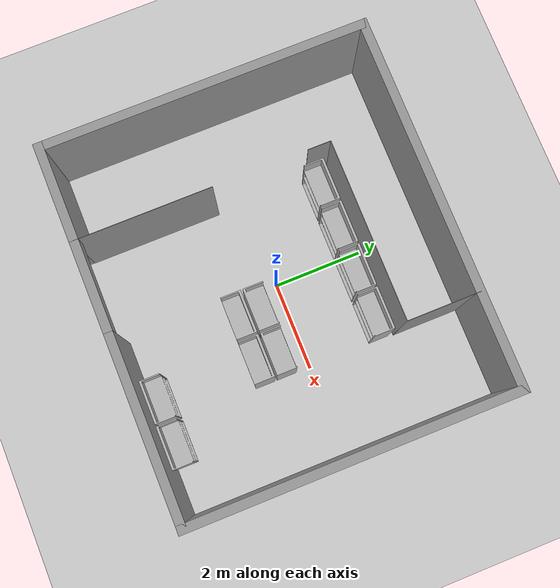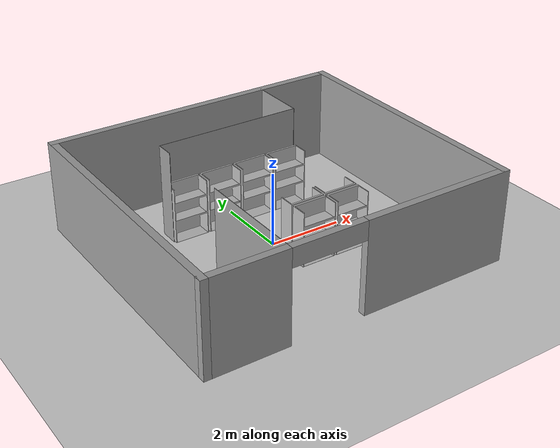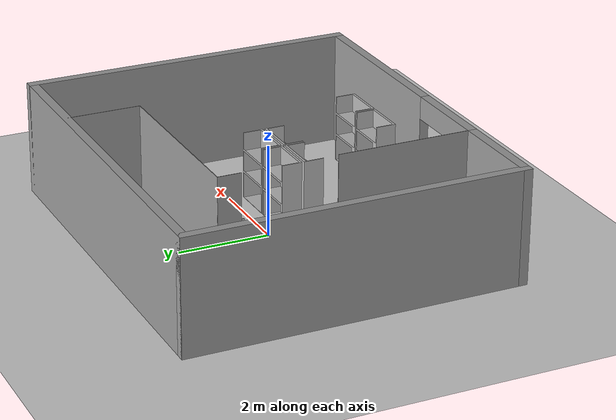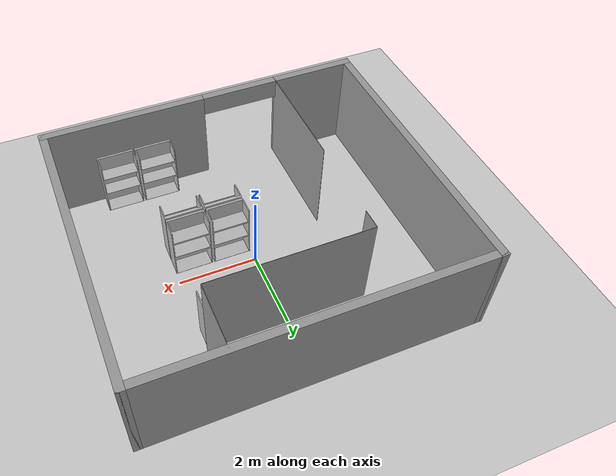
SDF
<sdf version="1.4">
 <world name="default">
  <light name="sun" type="directional">
   <pose>0 0 10 0 -0 0</pose>
   <diffuse>0.8 0.8 0.8 1</diffuse>
   <specular>0.2 0.2 0.2 1</specular>
   <attenuation>
    <range>1000</range>
    <constant>0.9</constant>
    <linear>0.01</linear>
    <quadratic>0.001</quadratic>
   </attenuation>
   <direction>-0.5 0.1 -0.9</direction>
  </light>
  <model name="ground_plane">
   <static>1</static>
   <link name="link">
    <collision name="collision">
     <geometry><plane><normal>0 0 1</normal><size>100 100</size></plane></geometry>
     <surface><friction><ode><mu>100</mu><mu2>50</mu2></ode></friction></surface>
    </collision>
    <visual name="visual">
     <cast_shadows>0</cast_shadows>
     <geometry><plane><normal>0 0 1</normal><size>100 100</size></plane></geometry>
     <material>
      <script><uri>file://media/materials/scripts/gazebo.material</uri><name>Gazebo/Grey</name></script>
     </material>
    </visual>
    <velocity_decay><linear>0</linear><angular>0</angular></velocity_decay>
   </link>
  </model>
  <physics type="ode">
   <max_step_size>0.001</max_step_size>
   <real_time_factor>1</real_time_factor>
   <real_time_update_rate>1000</real_time_update_rate>
   <gravity>0 0 -9.8</gravity>
  </physics>
  <scene><ambient>0.4 0.4 0.4 1</ambient><background>0.7 0.7 0.7 1</background><shadows>1</shadows></scene>
  <spherical_coordinates>
   <surface_model>EARTH_WGS84</surface_model>
   <latitude_deg>0</latitude_deg>
   <longitude_deg>0</longitude_deg>
   <elevation>0</elevation>
   <heading_deg>0</heading_deg>
  </spherical_coordinates>
  <model name="model">
   <link name="Wall_0">
    <collision name="Wall_0_Collision">
     <geometry><box><size>7.4 0.2 2.5</size></box></geometry>
     <pose>0 0 1.25 0 -0 0</pose>
    </collision>
    <visual name="Wall_0_Visual">
     <pose>0 0 1.25 0 -0 0</pose>
     <geometry><box><size>7.4 0.2 2.5</size></box></geometry>
     <material>
      <script><uri>file://media/materials/scripts/gazebo.material</uri><name>Gazebo/Grey</name></script>
     </material>
    </visual>
    <velocity_decay><linear>0</linear><angular>0</angular></velocity_decay>
    <pose>-4.1 0 0 0 -0 1.5708</pose>
   </link>
   <link name="Wall_1">
    <collision name="Wall_1_Collision">
     <geometry><box><size>8.4 0.2 2.5</size></box></geometry>
     <pose>0 0 1.25 0 -0 0</pose>
    </collision>
    <visual name="Wall_1_Visual">
     <pose>0 0 1.25 0 -0 0</pose>
     <geometry><box><size>8.4 0.2 2.5</size></box></geometry>
     <material>
      <script><uri>file://media/materials/scripts/gazebo.material</uri><name>Gazebo/Grey</name></script>
     </material>
    </visual>
    <velocity_decay><linear>0</linear><angular>0</angular></velocity_decay>
    <pose>0 3.6 0 0 -0 0</pose>
   </link>
   <link name="Wall_12">
    <collision name="Wall_12_Collision">
     <geometry><box><size>0.51 0.01 2.5</size></box></geometry>
     <pose>0 0 1.25 0 -0 0</pose>
    </collision>
    <visual name="Wall_12_Visual">
     <pose>0 0 1.25 0 -0 0</pose>
     <geometry><box><size>0.51 0.01 2.5</size></box></geometry>
     <material>
      <script><uri>file://media/materials/scripts/gazebo.material</uri><name>Gazebo/Grey</name></script>
     </material>
    </visual>
    <velocity_decay><linear>0</linear><angular>0</angular></velocity_decay>
    <pose>-2 1.75 0 0 -0 1.5708</pose>
   </link>
   <link name="Wall_13">
    <collision name="Wall_13_Collision">
     <geometry><box><size>4.01 0.01 2.5</size></box></geometry>
     <pose>0 0 1.25 0 -0 0</pose>
    </collision>
    <visual name="Wall_13_Visual">
     <pose>0 0 1.25 0 -0 0</pose>
     <geometry><box><size>4.01 0.01 2.5</size></box></geometry>
     <material>
      <script><uri>file://media/materials/scripts/gazebo.material</uri><name>Gazebo/Grey</name></script>
     </material>
    </visual>
    <velocity_decay><linear>0</linear><angular>0</angular></velocity_decay>
    <pose>0 2 0 0 -0 0</pose>
   </link>
   <link name="Wall_14">
    <collision name="Wall_14_Collision">
     <geometry><box><size>1.61 0.01 2.5</size></box></geometry>
     <pose>0 0 1.25 0 -0 0</pose>
    </collision>
    <visual name="Wall_14_Visual">
     <pose>0 0 1.25 0 -0 0</pose>
     <geometry><box><size>1.61 0.01 2.5</size></box></geometry>
     <material>
      <script><uri>file://media/materials/scripts/gazebo.material</uri><name>Gazebo/Grey</name></script>
     </material>
    </visual>
    <velocity_decay><linear>0</linear><angular>0</angular></velocity_decay>
    <pose>2 2.8 0 0 -0 1.5708</pose>
   </link>
   <link name="Wall_2">
    <collision name="Wall_2_Collision">
     <geometry><box><size>7.4 0.2 2.5</size></box></geometry>
     <pose>0 0 1.25 0 -0 0</pose>
    </collision>
    <visual name="Wall_2_Visual">
     <pose>0 0 1.25 0 -0 0</pose>
     <geometry><box><size>7.4 0.2 2.5</size></box></geometry>
     <material>
      <script><uri>file://media/materials/scripts/gazebo.material</uri><name>Gazebo/Grey</name></script>
     </material>
    </visual>
    <velocity_decay><linear>0</linear><angular>0</angular></velocity_decay>
    <pose>4.1 0 0 0 0 -1.5708</pose>
   </link>
   <link name="Wall_3">
    <pose>0 -3.6 0 0 -0 3.14159</pose>
    <visual name="Wall_3_Visual_0">
     <pose>-2.1 0 1.25 0 -0 0</pose>
     <geometry><box><size>4.2 0.2 2.5</size></box></geometry>
     <material>
      <script><uri>file://media/materials/scripts/gazebo.material</uri><name>Gazebo/Grey</name></script>
     </material>
    </visual>
    <collision name="Wall_3_Collision_0">
     <geometry><box><size>4.2 0.2 2.5</size></box></geometry>
     <pose>-2.1 0 1.25 0 -0 0</pose>
    </collision>
    <visual name="Wall_3_Visual_1">
     <pose>3.1 0 1.25 0 -0 0</pose>
     <geometry><box><size>2.2 0.2 2.5</size></box></geometry>
     <material>
      <script><uri>file://media/materials/scripts/gazebo.material</uri><name>Gazebo/Grey</name></script>
     </material>
    </visual>
    <collision name="Wall_3_Collision_1">
     <geometry><box><size>2.2 0.2 2.5</size></box></geometry>
     <pose>3.1 0 1.25 0 -0 0</pose>
    </collision>
    <visual name="Wall_3_Visual_2">
     <pose>1 0 2.25 0 -0 0</pose>
     <geometry><box><size>2 0.2 0.5</size></box></geometry>
     <material>
      <script><uri>file://media/materials/scripts/gazebo.material</uri><name>Gazebo/Grey</name></script>
     </material>
    </visual>
    <collision name="Wall_3_Collision_2">
     <geometry><box><size>2 0.2 0.5</size></box></geometry>
     <pose>1 0 2.25 0 -0 0</pose>
    </collision>
    <velocity_decay><linear>0</linear><angular>0</angular></velocity_decay>
   </link>
   <link name="Wall_5">
    <collision name="Wall_5_Collision">
     <geometry><box><size>3.01 0.01 2.5</size></box></geometry>
     <pose>0 0 1.25 0 -0 0</pose>
    </collision>
    <visual name="Wall_5_Visual">
     <pose>0 0 1.25 0 -0 0</pose>
     <geometry><box><size>3.01 0.01 2.5</size></box></geometry>
     <material>
      <script><uri>file://media/materials/scripts/gazebo.material</uri><name>Gazebo/Grey</name></script>
     </material>
    </visual>
    <velocity_decay><linear>0</linear><angular>0</angular></velocity_decay>
    <pose>-2 -2.1 0 0 -0 1.5708</pose>
   </link>
   <static>1</static>
  </model>
  <model name="shelfA">
   <link name="shelf">
    <inertial>
     <pose>-1.38e-08 -6.1e-09 3.66e-08 0 -0 0</pose>
     <mass>5</mass>
     <inertia>
      <ixx>1</ixx>
      <ixy>-7.01498e-09</ixy>
      <ixz>4.209e-08</ixz>
      <iyy>1</iyy>
      <iyz>1.8605e-08</iyz>
      <izz>1</izz>
     </inertia>
    </inertial>
    <collision name="shelf_collision">
     <geometry>
      <mesh>
       <scale>1 1 1</scale>
       <uri>/home/kdel/workspace/ros/fcsc_ws/src/fcsc_pkgs/fcsc_description/mesh/shelf.stl</uri>
      </mesh>
     </geometry>
    </collision>
    <collision name="shelf_collision_ar_marker_40">
     <pose>-0.23 0.265 0.61 0.785398 -1.56967 -0.784602</pose>
     <geometry><box><size>0.03 0.03 0.0001</size></box></geometry>
    </collision>
    <collision name="shelf_collision_ar_marker_41">
     <pose>-0.23 -0.135 0.61 0.785398 -1.56967 -0.784602</pose>
     <geometry><box><size>0.03 0.03 0.0001</size></box></geometry>
    </collision>
    <collision name="shelf_collision_ar_marker_42">
     <pose>-0.23 -0.435 0.61 0.785398 -1.56967 -0.784602</pose>
     <geometry><box><size>0.03 0.03 0.0001</size></box></geometry>
    </collision>
    <visual name="shelf_visual">
     <geometry>
      <mesh>
       <scale>1 1 1</scale>
       <uri>/home/kdel/workspace/ros/fcsc_ws/src/fcsc_pkgs/fcsc_description/mesh/shelf.stl</uri>
      </mesh>
     </geometry>
    </visual>
    <visual name="shelf_visual_ar_marker_40">
     <pose>-0.23 0.265 0.61 0.785398 -1.56967 -0.784602</pose>
     <geometry><box><size>0.03 0.03 0.0001</size></box></geometry>
     <material><script><name>ar_marker_40</name><uri>__default__</uri></script></material>
    </visual>
    <visual name="shelf_visual_ar_marker_41">
     <pose>-0.23 -0.135 0.61 0.785398 -1.56967 -0.784602</pose>
     <geometry><box><size>0.03 0.03 0.0001</size></box></geometry>
     <material><script><name>ar_marker_41</name><uri>__default__</uri></script></material>
    </visual>
    <visual name="shelf_visual_ar_marker_42">
     <pose>-0.23 -0.435 0.61 0.785398 -1.56967 -0.784602</pose>
     <geometry><box><size>0.03 0.03 0.0001</size></box></geometry>
     <material><script><name>ar_marker_42</name><uri>__default__</uri></script></material>
    </visual>
    <velocity_decay><linear>0</linear><angular>0</angular></velocity_decay>
    <velocity_decay><linear>0</linear><angular>0</angular></velocity_decay>
    <velocity_decay><linear>0</linear><angular>0</angular></velocity_decay>
   </link>
   <joint name="fix" type="revolute">
    <child>shelf</child>
    <parent>world</parent>
    <axis>
     <limit><lower>0</lower><upper>0</upper></limit>
     <dynamics><damping>0</damping></dynamics>
     <xyz>0 0 1</xyz>
    </axis>
   </joint>
   <pose>-0.5 1.65 0 0 -0 1.5708</pose>
   <static>0</static>
  </model>
  <model name="shelf2">
   <link name="shelf">
    <inertial>
     <mass>5</mass>
     <inertia><ixx>1</ixx><ixy>0</ixy><ixz>0</ixz><iyy>1</iyy><iyz>0</iyz><izz>1</izz></inertia>
    </inertial>
    <collision name="shelf_collision">
     <geometry>
      <mesh>
       <scale>1 1 1</scale>
       <uri>/home/kdel/workspace/ros/fcsc_ws/src/fcsc_pkgs/fcsc_description/mesh/shelf.stl</uri>
      </mesh>
     </geometry>
    </collision>
    <visual name="shelf_visual">
     <geometry>
      <mesh>
       <scale>1 1 1</scale>
       <uri>/home/kdel/workspace/ros/fcsc_ws/src/fcsc_pkgs/fcsc_description/mesh/shelf.stl</uri>
      </mesh>
     </geometry>
    </visual>
    <velocity_decay><linear>0</linear><angular>0</angular></velocity_decay>
   </link>
   <joint name="fix" type="revolute">
    <child>shelf</child>
    <parent>world</parent>
    <axis>
     <limit><lower>0</lower><upper>0</upper></limit>
     <dynamics><damping>0</damping></dynamics>
     <xyz>0 0 1</xyz>
    </axis>
   </joint>
   <pose>0.5 1.65 0 0 -0 1.5708</pose>
   <static>0</static>
  </model>
  <model name="shelf3">
   <link name="shelf">
    <inertial>
     <mass>5</mass>
     <inertia><ixx>1</ixx><ixy>0</ixy><ixz>0</ixz><iyy>1</iyy><iyz>0</iyz><izz>1</izz></inertia>
    </inertial>
    <collision name="shelf_collision">
     <geometry>
      <mesh>
       <scale>1 1 1</scale>
       <uri>/home/kdel/workspace/ros/fcsc_ws/src/fcsc_pkgs/fcsc_description/mesh/shelf.stl</uri>
      </mesh>
     </geometry>
    </collision>
    <visual name="shelf_visual">
     <geometry>
      <mesh>
       <scale>1 1 1</scale>
       <uri>/home/kdel/workspace/ros/fcsc_ws/src/fcsc_pkgs/fcsc_description/mesh/shelf.stl</uri>
      </mesh>
     </geometry>
    </visual>
    <velocity_decay><linear>0</linear><angular>0</angular></velocity_decay>
   </link>
   <joint name="fix" type="revolute">
    <child>shelf</child>
    <parent>world</parent>
    <axis>
     <limit><lower>0</lower><upper>0</upper></limit>
     <dynamics><damping>0</damping></dynamics>
     <xyz>0 0 1</xyz>
    </axis>
   </joint>
   <pose>1.5 -0.55 0 0 0 -1.5708</pose>
   <static>0</static>
  </model>
  <model name="shelfB">
   <link name="shelf">
    <inertial>
     <mass>5</mass>
     <inertia><ixx>1</ixx><ixy>0</ixy><ixz>0</ixz><iyy>1</iyy><iyz>0</iyz><izz>1</izz></inertia>
    </inertial>
    <collision name="shelf_collision">
     <geometry>
      <mesh>
       <scale>1 1 1</scale>
       <uri>/home/kdel/workspace/ros/fcsc_ws/src/fcsc_pkgs/fcsc_description/mesh/shelf.stl</uri>
      </mesh>
     </geometry>
    </collision>
    <visual name="shelf_visual">
     <geometry>
      <mesh>
       <scale>1 1 1</scale>
       <uri>/home/kdel/workspace/ros/fcsc_ws/src/fcsc_pkgs/fcsc_description/mesh/shelf.stl</uri>
      </mesh>
     </geometry>
    </visual>
    <velocity_decay><linear>0</linear><angular>0</angular></velocity_decay>
   </link>
   <joint name="fix" type="revolute">
    <child>shelf</child>
    <parent>world</parent>
    <axis>
     <limit><lower>0</lower><upper>0</upper></limit>
     <dynamics><damping>0</damping></dynamics>
     <xyz>0 0 1</xyz>
    </axis>
   </joint>
   <pose>-1.5 1.65 0 0 -0 1.5708</pose>
   <static>0</static>
  </model>
  <model name="shelf8">
   <link name="shelf">
    <inertial>
     <mass>5</mass>
     <inertia><ixx>1</ixx><ixy>0</ixy><ixz>0</ixz><iyy>1</iyy><iyz>0</iyz><izz>1</izz></inertia>
    </inertial>
    <collision name="shelf_collision">
     <geometry>
      <mesh>
       <scale>1 1 1</scale>
       <uri>/home/kdel/workspace/ros/fcsc_ws/src/fcsc_pkgs/fcsc_description/mesh/shelf.stl</uri>
      </mesh>
     </geometry>
    </collision>
    <visual name="shelf_visual">
     <geometry>
      <mesh>
       <scale>1 1 1</scale>
       <uri>/home/kdel/workspace/ros/fcsc_ws/src/fcsc_pkgs/fcsc_description/mesh/shelf.stl</uri>
      </mesh>
     </geometry>
    </visual>
    <velocity_decay><linear>0</linear><angular>0</angular></velocity_decay>
   </link>
   <joint name="fix" type="revolute">
    <child>shelf</child>
    <parent>world</parent>
    <axis>
     <limit><lower>0</lower><upper>0</upper></limit>
     <dynamics><damping>0</damping></dynamics>
     <xyz>0 0 1</xyz>
    </axis>
   </joint>
   <pose>1.5 -3.25 0 0 0 -1.5708</pose>
   <static>0</static>
  </model>
  <model name="shelf7">
   <link name="shelf">
    <inertial>
     <mass>5</mass>
     <inertia><ixx>1</ixx><ixy>0</ixy><ixz>0</ixz><iyy>1</iyy><iyz>0</iyz><izz>1</izz></inertia>
    </inertial>
    <collision name="shelf_collision">
     <geometry>
      <mesh>
       <scale>1 1 1</scale>
       <uri>/home/kdel/workspace/ros/fcsc_ws/src/fcsc_pkgs/fcsc_description/mesh/shelf.stl</uri>
      </mesh>
     </geometry>
    </collision>
    <visual name="shelf_visual">
     <geometry>
      <mesh>
       <scale>1 1 1</scale>
       <uri>/home/kdel/workspace/ros/fcsc_ws/src/fcsc_pkgs/fcsc_description/mesh/shelf.stl</uri>
      </mesh>
     </geometry>
    </visual>
    <velocity_decay><linear>0</linear><angular>0</angular></velocity_decay>
   </link>
   <joint name="fix" type="revolute">
    <child>shelf</child>
    <parent>world</parent>
    <axis>
     <limit><lower>0</lower><upper>0</upper></limit>
     <dynamics><damping>0</damping></dynamics>
     <xyz>0 0 1</xyz>
    </axis>
   </joint>
   <pose>2.5 -3.25 0 0 0 -1.5708</pose>
   <static>0</static>
  </model>
  <model name="shelf1">
   <link name="shelf">
    <inertial>
     <mass>5</mass>
     <inertia><ixx>1</ixx><ixy>0</ixy><ixz>0</ixz><iyy>1</iyy><iyz>0</iyz><izz>1</izz></inertia>
    </inertial>
    <collision name="shelf_collision">
     <geometry>
      <mesh>
       <scale>1 1 1</scale>
       <uri>/home/kdel/workspace/ros/fcsc_ws/src/fcsc_pkgs/fcsc_description/mesh/shelf.stl</uri>
      </mesh>
     </geometry>
    </collision>
    <visual name="shelf_visual">
     <geometry>
      <mesh>
       <scale>1 1 1</scale>
       <uri>/home/kdel/workspace/ros/fcsc_ws/src/fcsc_pkgs/fcsc_description/mesh/shelf.stl</uri>
      </mesh>
     </geometry>
    </visual>
    <velocity_decay><linear>0</linear><angular>0</angular></velocity_decay>
   </link>
   <joint name="fix" type="revolute">
    <child>shelf</child>
    <parent>world</parent>
    <axis>
     <limit><lower>0</lower><upper>0</upper></limit>
     <dynamics><damping>0</damping></dynamics>
     <xyz>0 0 1</xyz>
    </axis>
   </joint>
   <pose>1.5 1.65 0 0 -0 1.5708</pose>
   <static>0</static>
  </model>
  <model name="shelf6">
   <link name="shelf">
    <inertial>
     <mass>5</mass>
     <inertia><ixx>1</ixx><ixy>0</ixy><ixz>0</ixz><iyy>1</iyy><iyz>0</iyz><izz>1</izz></inertia>
    </inertial>
    <collision name="shelf_collision">
     <geometry>
      <mesh>
       <scale>1 1 1</scale>
       <uri>/home/kdel/workspace/ros/fcsc_ws/src/fcsc_pkgs/fcsc_description/mesh/shelf.stl</uri>
      </mesh>
     </geometry>
    </collision>
    <visual name="shelf_visual">
     <geometry>
      <mesh>
       <scale>1 1 1</scale>
       <uri>/home/kdel/workspace/ros/fcsc_ws/src/fcsc_pkgs/fcsc_description/mesh/shelf.stl</uri>
      </mesh>
     </geometry>
    </visual>
    <velocity_decay><linear>0</linear><angular>0</angular></velocity_decay>
   </link>
   <joint name="fix" type="revolute">
    <child>shelf</child>
    <parent>world</parent>
    <axis>
     <limit><lower>0</lower><upper>0</upper></limit>
     <dynamics><damping>0</damping></dynamics>
     <xyz>0 0 1</xyz>
    </axis>
   </joint>
   <pose>0.5 -1.05 0 0 -0 1.5708</pose>
   <static>0</static>
  </model>
  <model name="shelf4">
   <link name="shelf">
    <inertial>
     <mass>5</mass>
     <inertia><ixx>1</ixx><ixy>0</ixy><ixz>0</ixz><iyy>1</iyy><iyz>0</iyz><izz>1</izz></inertia>
    </inertial>
    <collision name="shelf_collision">
     <geometry>
      <mesh>
       <scale>1 1 1</scale>
       <uri>/home/kdel/workspace/ros/fcsc_ws/src/fcsc_pkgs/fcsc_description/mesh/shelf.stl</uri>
      </mesh>
     </geometry>
    </collision>
    <visual name="shelf_visual">
     <geometry>
      <mesh>
       <scale>1 1 1</scale>
       <uri>/home/kdel/workspace/ros/fcsc_ws/src/fcsc_pkgs/fcsc_description/mesh/shelf.stl</uri>
      </mesh>
     </geometry>
    </visual>
    <velocity_decay><linear>0</linear><angular>0</angular></velocity_decay>
   </link>
   <joint name="fix" type="revolute">
    <child>shelf</child>
    <parent>world</parent>
    <axis>
     <limit><lower>0</lower><upper>0</upper></limit>
     <dynamics><damping>0</damping></dynamics>
     <xyz>0 0 1</xyz>
    </axis>
   </joint>
   <pose>0.5 -0.55 0 0 0 -1.5708</pose>
   <static>0</static>
  </model>
  <model name="shelf5">
   <link name="shelf">
    <inertial>
     <mass>5</mass>
     <inertia><ixx>1</ixx><ixy>0</ixy><ixz>0</ixz><iyy>1</iyy><iyz>0</iyz><izz>1</izz></inertia>
    </inertial>
    <collision name="shelf_collision">
     <geometry>
      <mesh>
       <scale>1 1 1</scale>
       <uri>/home/kdel/workspace/ros/fcsc_ws/src/fcsc_pkgs/fcsc_description/mesh/shelf.stl</uri>
      </mesh>
     </geometry>
    </collision>
    <visual name="shelf_visual">
     <geometry>
      <mesh>
       <scale>1 1 1</scale>
       <uri>/home/kdel/workspace/ros/fcsc_ws/src/fcsc_pkgs/fcsc_description/mesh/shelf.stl</uri>
      </mesh>
     </geometry>
    </visual>
    <velocity_decay><linear>0</linear><angular>0</angular></velocity_decay>
   </link>
   <joint name="fix" type="revolute">
    <child>shelf</child>
    <parent>world</parent>
    <axis>
     <limit><lower>0</lower><upper>0</upper></limit>
     <dynamics><damping>0</damping></dynamics>
     <xyz>0 0 1</xyz>
    </axis>
   </joint>
   <pose>1.5 -1.05 0 0 -0 1.5708</pose>
   <static>0</static>
  </model>
 </world>
</sdf>
